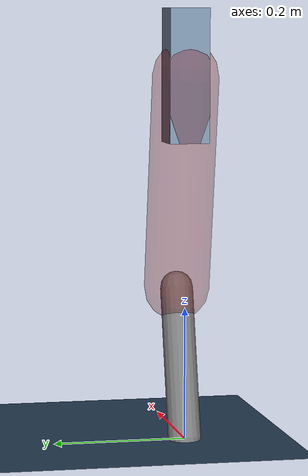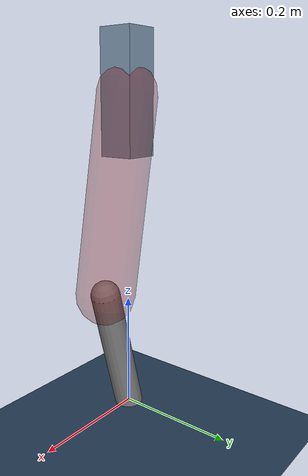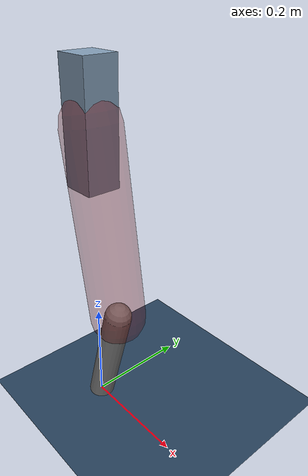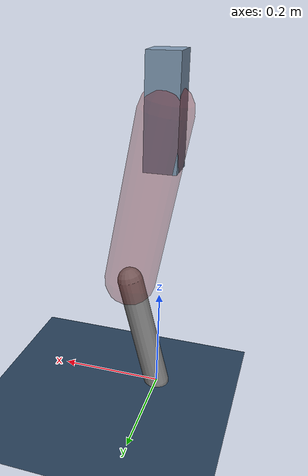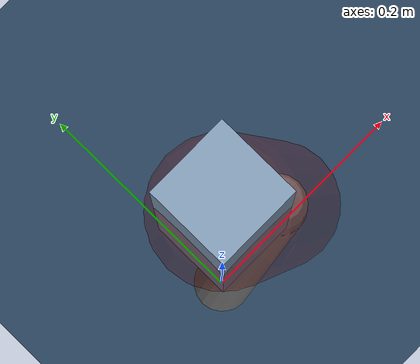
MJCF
<mujoco model="Hopper2D">
	<compiler inertiafromgeom="true" angle="radian" />
	<option timestep="0.001" integrator="implicit" cone="elliptic" solver="Newton" tolerance="1e-10" />

	<default>
		<geom contype="1" conaffinity="1" condim="3" friction="2 0.005 0.0001" solref="0.005 1" />
		<joint limited="true" damping="0.1" />
	</default>

	<asset>
		<texture name="skybox" type="skybox" builtin="gradient" rgb1=".4 .6 .8" rgb2="0 0 0" width="800" height="800" />
		<texture name="grid" type="2d" builtin="checker" rgb1=".1 .2 .3" rgb2=".2 .3 .4" width="300" height="300" mark="edge" markrgb=".2 .3 .4" />
		<material name="ground" texture="grid" texrepeat="1 1" texuniform="true" reflectance="0.1" />
		<material name="leg" rgba="0.5 0.6 0.7 1" />
	</asset>

	<worldbody>

		<geom name="floor" type="plane" size="5 5 0.25" material="ground" />

		<light directional="false" diffuse="0.8 0.8 0.8" specular="0.3 0.3 0.3" pos="0 0 2" dir="0 0 -1" />
		<light mode="targetbodycom" target="base" directional="false" diffuse="0.8 0.8 0.8" specular="0.3 0.3 0.3" pos="0 0 2" dir="0 0 -1" />

		<camera name="fixed" pos="0 -2 1" xyaxes="1 0 0 0 0 1" />
		<camera name="tracking" mode="trackcom" pos="0 -3 1" />

		<body name="root" pos="0 0 0.55077417694678">
			<joint name="slide_x" type="slide" axis="1 0 0" range="-100 100" />
			<joint name="slide_z" type="slide" axis="0 0 1" range="0 10" />

			<body name="base" pos="0 0 0">
				<geom name="torso" type="box" size="0.03 0.03 0.1" mass="3.423" material="leg" />

				<body name="link1" pos="0 0 0" euler="0 1.3905189554774038 0">
					<joint type="hinge" axis="0 -1 0" pos="0 0 0" name="hinge1" limited="true" range="-3.14 3.14" stiffness="0" damping="0.1" />
					<geom name="thigh" type="capsule" fromto="0 0 0 0.3320831055747622 0 0" size="0.05" rgba="0.5 0 0 0.3" mass="1.0766326956093342" />

					<body name="link2" pos="0.3320831055747622 0 0" euler="0 0.44000694763980835 0">
						<joint type="hinge" axis="0 -1 0" pos="0 0 0" name="hinge2" limited="true" range="-3.14 3.14" stiffness="0" damping="0.1" />
						<geom name="shank" type="capsule" fromto="0 0 0 0.2318491561792734 0 0" size="0.025" mass="0.42747932494341867" />

					</body>
				</body>
			</body>
		</body>
	</worldbody>

	<actuator>
		<motor name="torque1" joint="hinge1" ctrlrange="-91.92850397927295 91.92850397927295" ctrllimited="true" gear="1" />
		<motor name="torque2" joint="hinge2" ctrlrange="-170.85609517894326 170.85609517894326" ctrllimited="true" gear="1" />
	</actuator>
</mujoco>
